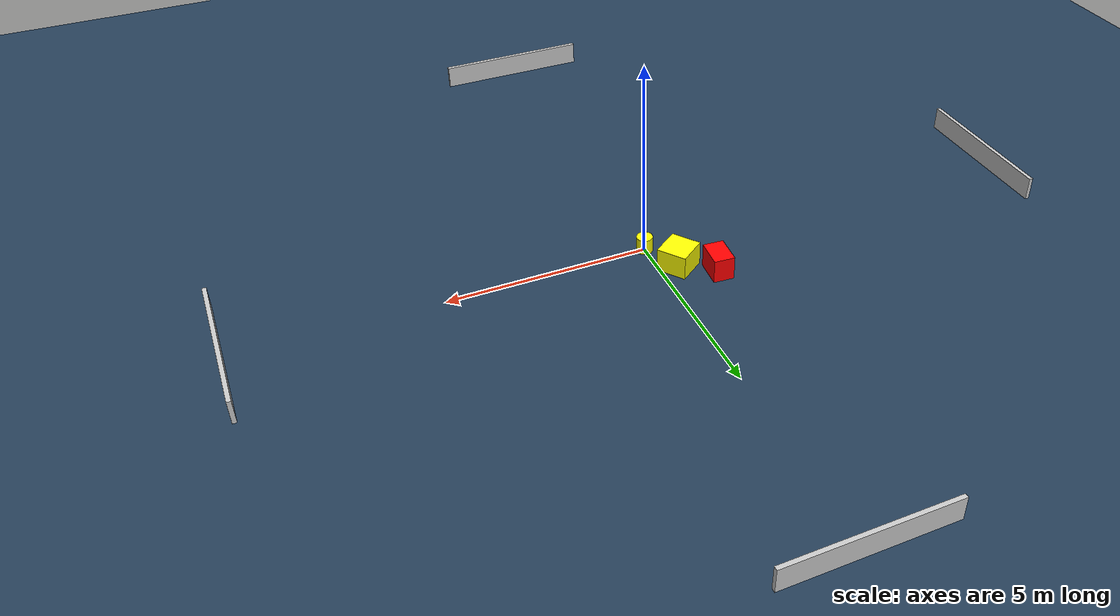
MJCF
<?xml version="1.0" ?>
<mujoco model="generated_environment">
  <option timestep="0.01" integrator="RK4" cone="elliptic"/>
  <default>
    <geom density="1"/>
  </default>
  <asset>
    <texture builtin="gradient" height="3072" name="skybox" rgb1="0.3 0.5 0.7" rgb2="0 0 0" type="skybox" width="512"/>
    <texture builtin="checker" height="300" name="groundplane" rgb1="0.2 0.3 0.4" rgb2="0.1 0.2 0.3" type="2d" width="300"/>
    <material name="groundplane" reflectance="0.2" texrepeat="5 5" texture="groundplane"/>
  </asset>
  <worldbody>
    <light dir="0 0 -1" directional="true" pos="0 0 1.5"/>
    <geom condim="3" friction="0.5 0.005 0.001" material="groundplane" name="floor" pos="0 0 0" size="0 0 0.05" type="plane"/>
    <body name="walls">
      <geom name="wall_1" condim="4" pos="-10.0 0.0 0.3" rgba="0.800000011920929 0.800000011920929 0.800000011920929 1.0" size="0.05 2.0 0.3" type="box"/>
      <geom name="wall_2" condim="4" pos="10.0 0.0 0.3" rgba="0.800000011920929 0.800000011920929 0.800000011920929 1.0" size="0.05 2.0 0.3" type="box"/>
      <geom name="wall_3" condim="4" pos="0.0 -10.0 0.3" rgba="0.800000011920929 0.800000011920929 0.800000011920929 1.0" size="2.0 0.05 0.3" type="box"/>
      <geom name="wall_4" condim="4" pos="0.0 10.0 0.3" rgba="0.800000011920929 0.800000011920929 0.800000011920929 1.0" size="2.0 0.05 0.3" type="box"/>
    </body>
    <body name="robot">
      <joint name="joint_x" type="slide" pos="0 0 0" axis="1 0 0"/>
      <joint name="joint_y" type="slide" pos="0 0 0" axis="0 1 0"/>
      <geom name="robot" type="cylinder" pos="0.0 0.0 0.2" size="0.2 0.2 0.0" mass="5.0" friction="1.0 0.005 0.0001" condim="4" rgba="1.0 1.0 0.0 1.0"/>
    </body>
    <body name="obstacle_1_movable">
      <geom name="obstacle_1_movable" condim="4" pos="-0.4733860906892286 0.9309884959438278 0.3" euler="0 0 216.32260165895357" friction="0.0 0.005 0.001" rgba="1.0 1.0 0.0 1.0" size="0.3776375132771681 0.3739271590599144 0.3" type="box" mass="0.1"/>
      <joint type="free"/>
    </body>
    <body name="obstacle_2_static">
      <geom name="obstacle_2_static" condim="4" pos="-1.2459903444698903 1.4987037830257777 0.3" euler="0 0 355.5827610960757" friction="0.0 0.005 0.001" rgba="1.0 0.0 0.0 1.0" size="0.256251150868943 0.3632160870829234 0.3" type="box"/>
    </body>
  </worldbody>
  <actuator>
    <motor name="actuator_x" joint="joint_x" gear="1" ctrlrange="-1 1"/>
    <motor name="actuator_y" joint="joint_y" gear="1" ctrlrange="-1 1"/>
  </actuator>
</mujoco>
